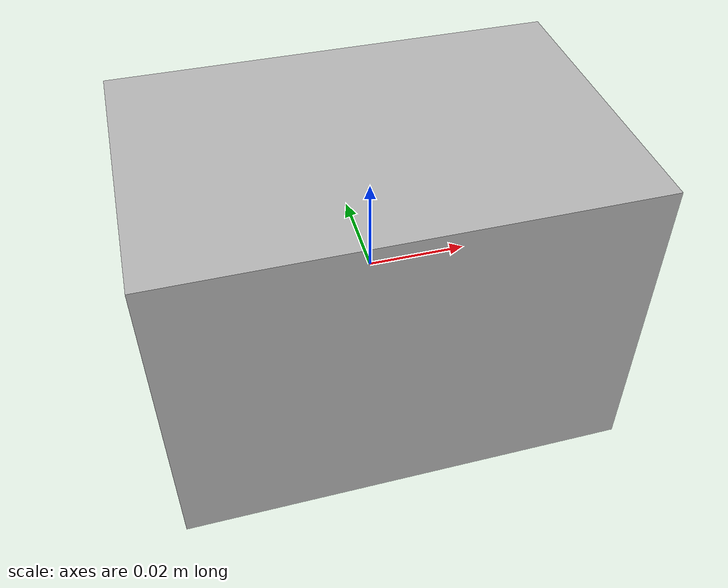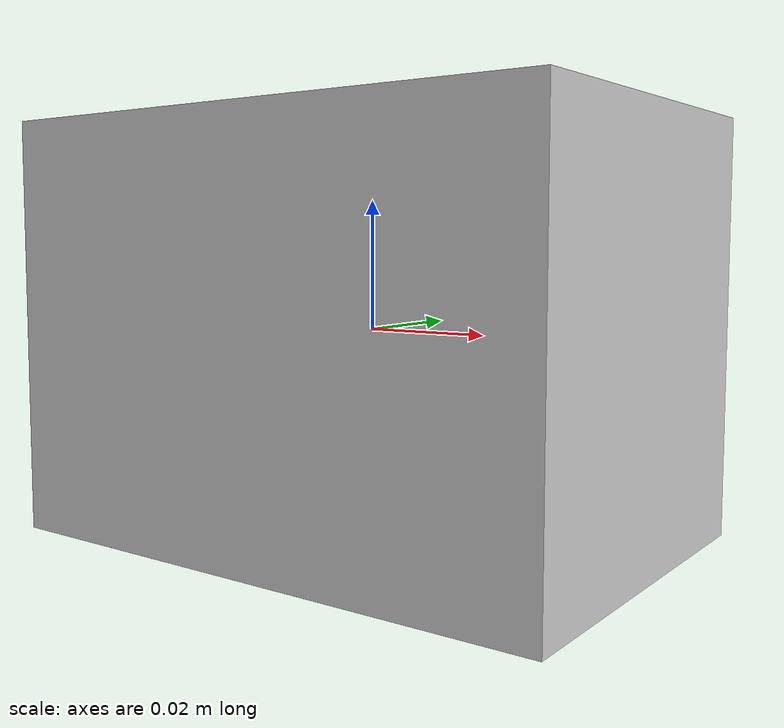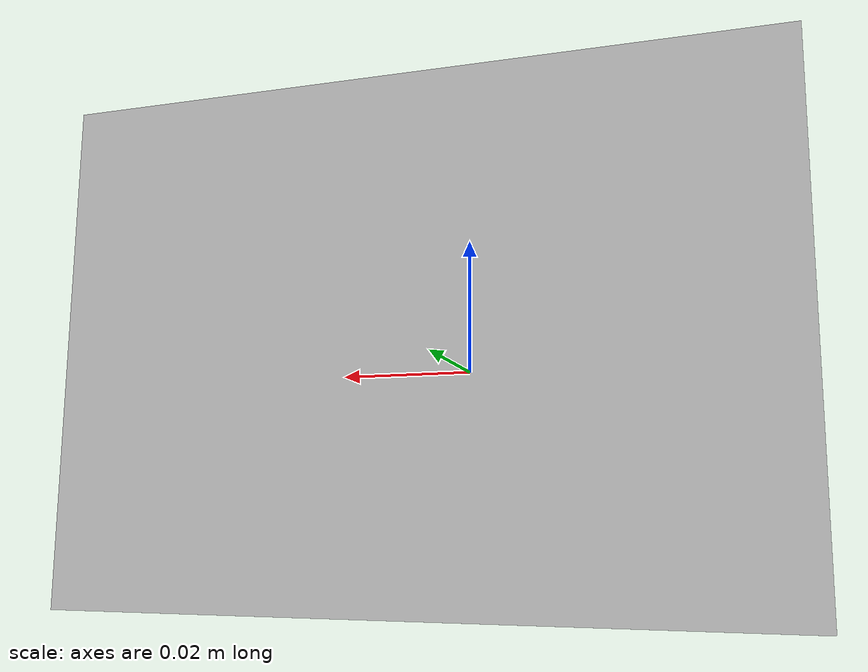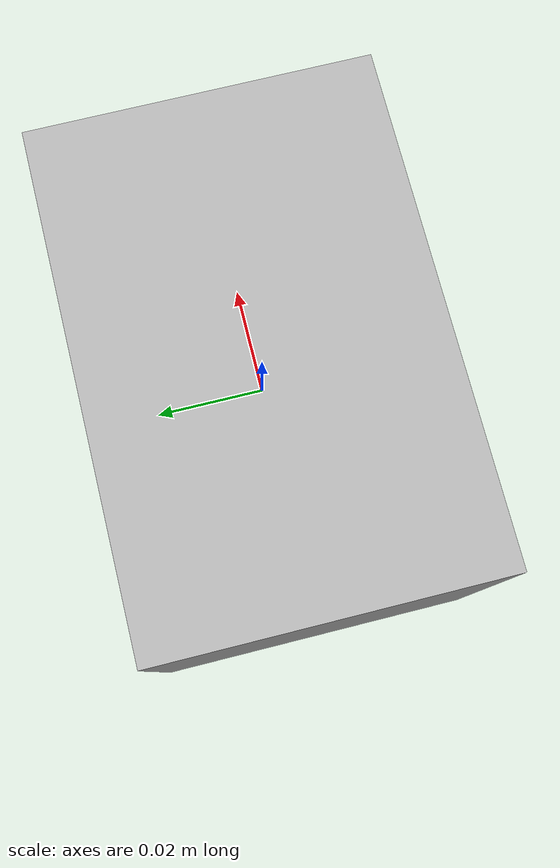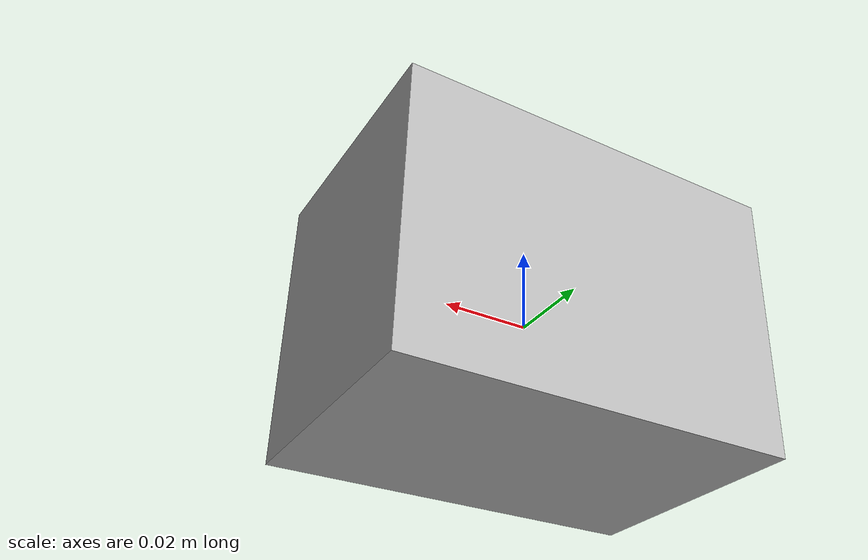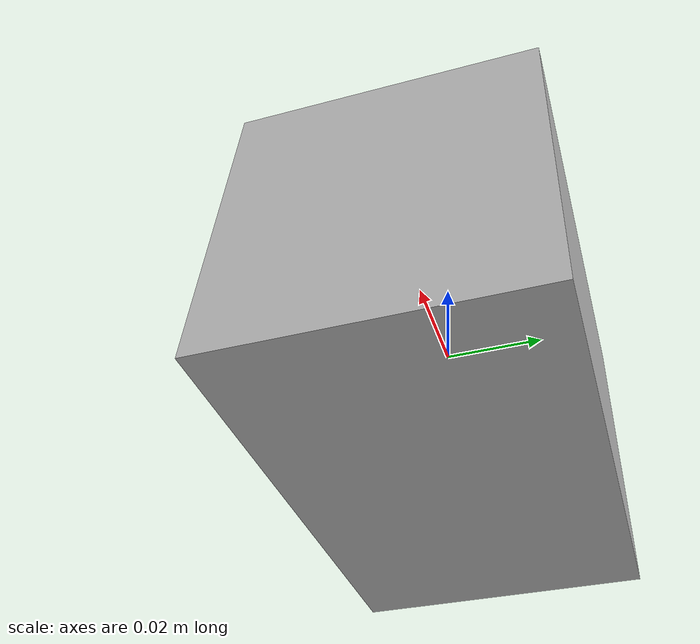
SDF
<?xml version="1.0" ?>
<sdf version="1.9">
  <model name="multiline_lidar_test">
    <static>false</static>
    <link name="link">
      <inertial>
        <mass>0.498</mass>
        <inertia>
          <ixx>0.0001</ixx>
          <iyy>0.0001</iyy>
          <izz>0.0001</izz>
        </inertia>
      </inertial>

      <visual name="visual">
        <geometry>
          <box>
            <size>0.0912 0.0612 0.0648</size>
          </box>
        </geometry>
      </visual>

      <collision name="collision">
        <geometry>
          <box>
            <size>0.0912 0.0612 0.0648</size>
          </box>
        </geometry>
      </collision>

      <sensor name="lidar_row_0" type="gpu_lidar">
        <pose>0 0 0 0 -0.67370 0</pose> <!-- pitch: -38.6 deg -->
        <topic>lidar/row_0</topic>
        <update_rate>10</update_rate>
        <always_on>true</always_on>
        <visualize>false</visualize>
        <lidar>
          <scan>
            <horizontal>
              <samples>90</samples>
              <resolution>1</resolution>
              <min_angle>-0.61436</min_angle>
              <max_angle>0.61436</max_angle>
            </horizontal>
          </scan>
          <range>
            <min>0.1</min>
            <max>450.0</max>
            <resolution>0.01</resolution>
          </range>
          <noise>
            <type>gaussian</type>
            <mean>0.0</mean>
            <stddev>0.02</stddev>
          </noise>
        </lidar>
      </sensor>
      <sensor name="lidar_row_1" type="gpu_lidar">
        <pose>0 0 0 0 0.00000 0</pose> <!-- pitch: 0.0 deg -->
        <topic>lidar/row_1</topic>
        <update_rate>10</update_rate>
        <always_on>true</always_on>
        <visualize>false</visualize>
        <lidar>
          <scan>
            <horizontal>
              <samples>90</samples>
              <resolution>1</resolution>
              <min_angle>-0.61436</min_angle>
              <max_angle>0.61436</max_angle>
            </horizontal>
          </scan>
          <range>
            <min>0.1</min>
            <max>450.0</max>
            <resolution>0.01</resolution>
          </range>
          <noise>
            <type>gaussian</type>
            <mean>0.0</mean>
            <stddev>0.02</stddev>
          </noise>
        </lidar>
      </sensor>
      <sensor name="lidar_row_2" type="gpu_lidar">
        <pose>0 0 0 0 0.67370 0</pose> <!-- pitch: 38.6 deg -->
        <topic>lidar/row_2</topic>
        <update_rate>10</update_rate>
        <always_on>true</always_on>
        <visualize>false</visualize>
        <lidar>
          <scan>
            <horizontal>
              <samples>90</samples>
              <resolution>1</resolution>
              <min_angle>-0.61436</min_angle>
              <max_angle>0.61436</max_angle>
            </horizontal>
          </scan>
          <range>
            <min>0.1</min>
            <max>450.0</max>
            <resolution>0.01</resolution>
          </range>
          <noise>
            <type>gaussian</type>
            <mean>0.0</mean>
            <stddev>0.02</stddev>
          </noise>
        </lidar>
      </sensor>
    </link>
  </model>
</sdf>
